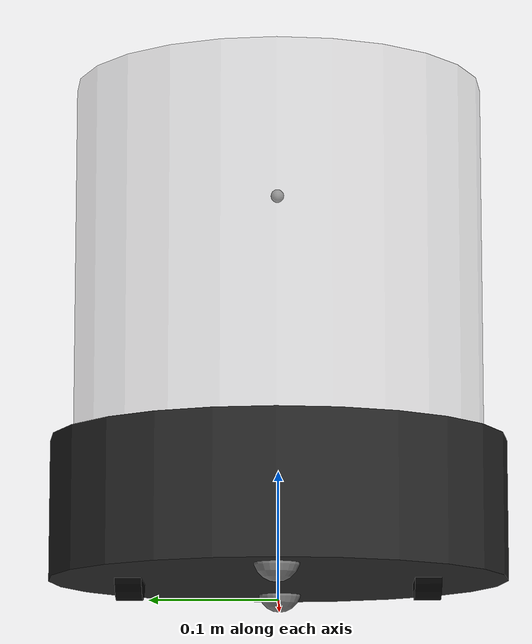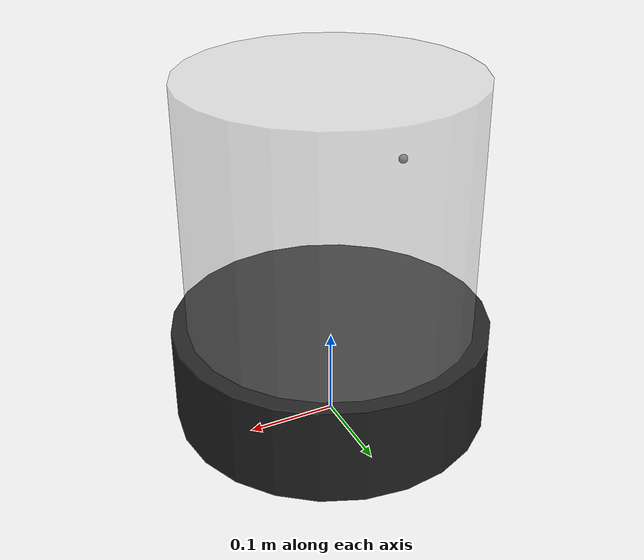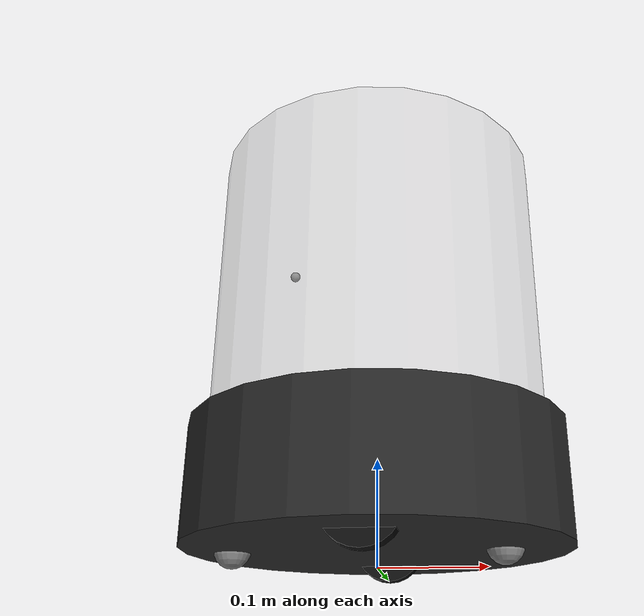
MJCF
<mujoco model="kobuki">
  <default>
    <default class="robot">
      <geom group="2" friction="1 0.005 0.0001"/>
    </default>
  </default>
  <worldbody>
    <body name="robot" childclass="robot">
      <freejoint name="root"/>
      <!-- URDF: cyl r=0.178 l=0.10938 at z=0.05949 above base_link (base_link 0.0102 above floor) -->
      <geom name="base" type="cylinder" size="0.178 0.05469" pos="0 0 0.06969" mass="2.4" rgba=".15 .15 .15 1"/>
      <!-- TurtleBot 2 plates + Astra: lumped mass/collision volume (not in the Kobuki URDF) -->
      <geom name="stack" type="cylinder" size="0.16 0.14" pos="0 0 0.265" mass="1.6" rgba=".75 .75 .75 .35"/>
      <!-- frictionless casters (priority so floor friction/condim does not apply), URDF x positions,
           lifted 1 mm: Kobuki wheels are spring-loaded and carry the weight -->
      <geom name="caster_f" type="sphere" size="0.0175" pos="0.115 0 0.0185" condim="1" priority="1" friction="0 0 0" mass="0.01"/>
      <geom name="caster_b" type="sphere" size="0.0175" pos="-0.135 0 0.0185" condim="1" priority="1" friction="0 0 0" mass="0.01"/>
      <site name="imu" pos="0.056 0.062 0.0304"/>
      <site name="depth_cam" pos="-0.087 0 0.30"/>
      <!-- wheel mass raised from the URDF's 0.01 kg (unphysical) to 0.1 kg; armature = gearmotor
           rotor inertia reflected through the 49.6:1 gearbox (~1e-6 kg m^2 * 49.6^2) -->
      <body name="wheel_l" pos="0 0.115 0.035">
        <joint name="wheel_l" type="hinge" axis="0 1 0" armature="0.0025"/>
        <geom name="wheel_l" type="cylinder" size="0.035 0.0103" zaxis="0 1 0" mass="0.1" condim="3" rgba=".05 .05 .05 1"/>
      </body>
      <body name="wheel_r" pos="0 -0.115 0.035">
        <joint name="wheel_r" type="hinge" axis="0 1 0" armature="0.0025"/>
        <geom name="wheel_r" type="cylinder" size="0.035 0.0103" zaxis="0 1 0" mass="0.1" condim="3" rgba=".05 .05 .05 1"/>
      </body>
    </body>
  </worldbody>
  <actuator>
    <!-- wheel speed servo; forcerange is the motor torque limit (calibration knob) -->
    <velocity name="wheel_l" joint="wheel_l" kv="2" ctrlrange="-20 20" forcerange="-1.5 1.5"/>
    <velocity name="wheel_r" joint="wheel_r" kv="2" ctrlrange="-20 20" forcerange="-1.5 1.5"/>
  </actuator>
  <sensor>
    <jointpos name="enc_l" joint="wheel_l"/>
    <jointpos name="enc_r" joint="wheel_r"/>
    <gyro name="gyro" site="imu"/>
    <accelerometer name="accel" site="imu"/>
  </sensor>
</mujoco>
